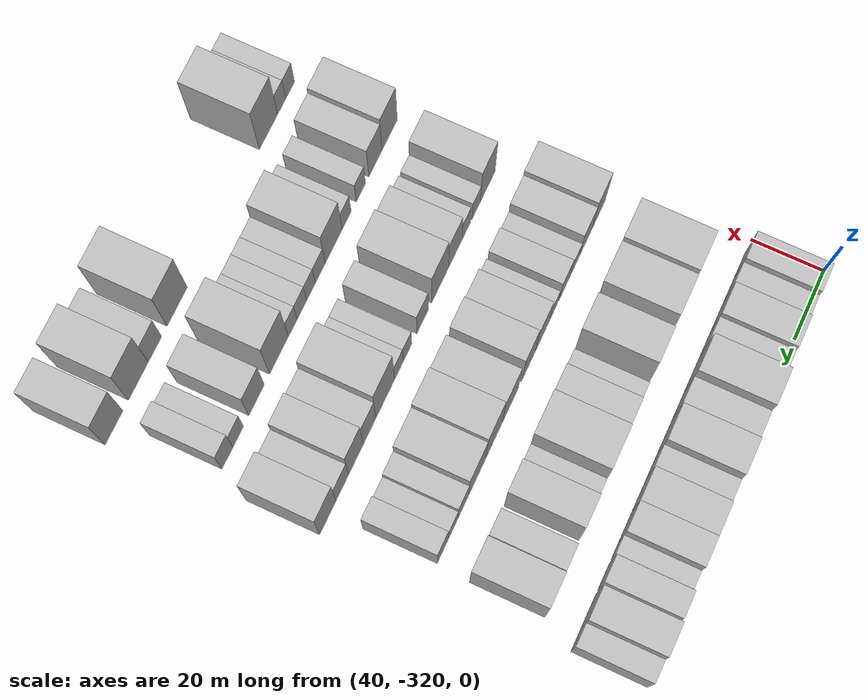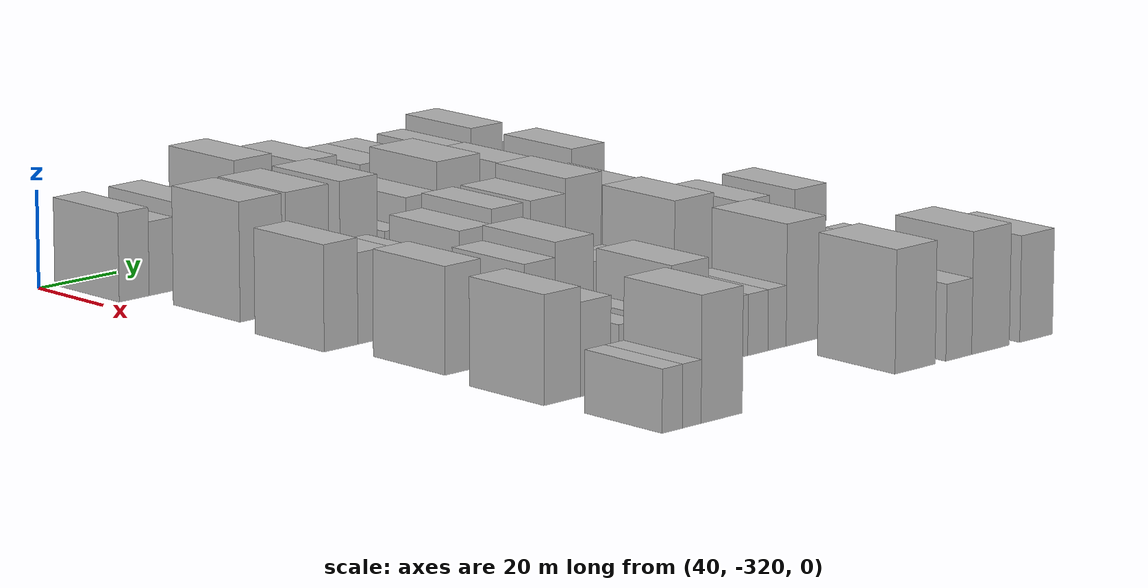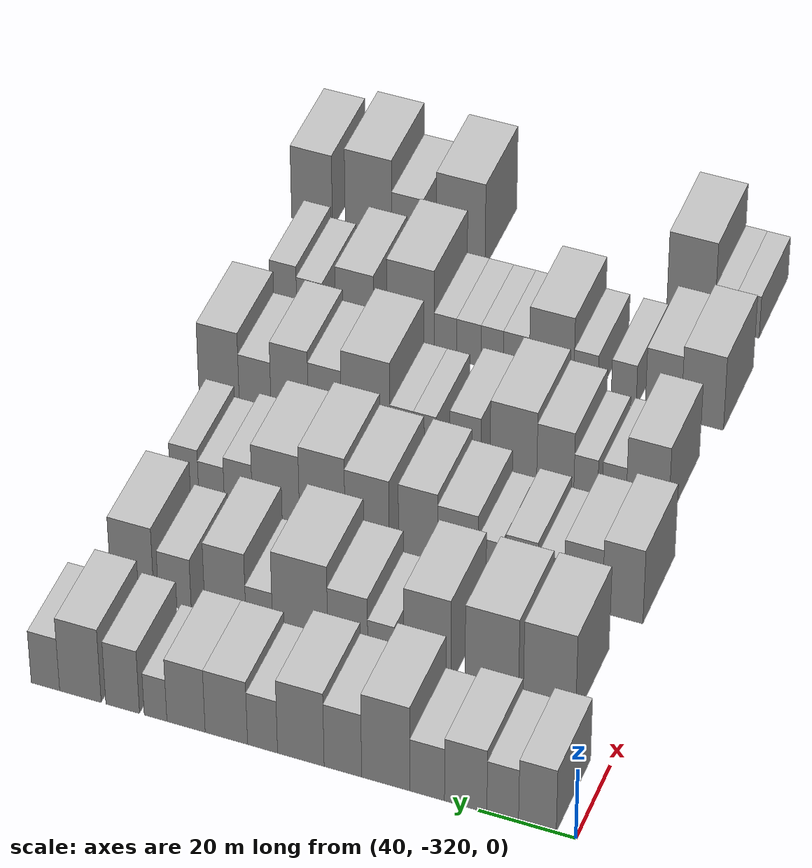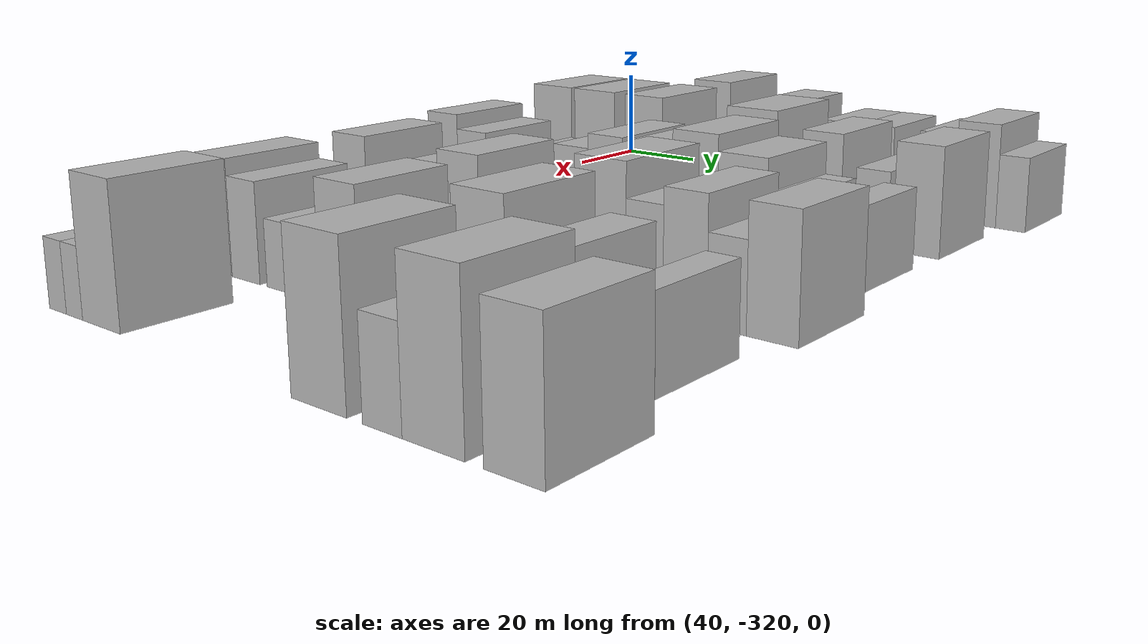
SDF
<sdf version="1.6">
 <world name="default">
  <model name="building_24">
   <static>1</static>
   <pose>50.0000 -312.0720 0 0.000000 0.000000 0.000000</pose>
   <link name="link">
    <pose>0 0 9.00 0 0 0</pose>
    <collision name="collision"><geometry><box><size>20.0000 7.7476 18.0000</size></box></geometry></collision>
    <visual name="visual">
     <cast_shadows>0</cast_shadows>
     <geometry><box><size>20.0000 7.7476 18.0000</size></box></geometry>
     <material>
      <script>
       <uri>model://HANNAS_wall/materials/scripts</uri>
       <uri>model://HANNAS_wall/materials/textures</uri>
       <name>vrc/HANNAS_wall</name>
      </script>
     </material>
    </visual>
   </link>
  </model>
  <model name="building_25">
   <static>1</static>
   <pose>50.0000 -304.9393 0 0.000000 0.000000 0.000000</pose>
   <link name="link">
    <pose>0 0 7.50 0 0 0</pose>
    <collision name="collision"><geometry><box><size>20.0000 6.5178 15.0000</size></box></geometry></collision>
    <visual name="visual">
     <cast_shadows>0</cast_shadows>
     <geometry><box><size>20.0000 6.5178 15.0000</size></box></geometry>
     <material>
      <script>
       <uri>model://HANNAS_wall/materials/scripts</uri>
       <uri>model://HANNAS_wall/materials/textures</uri>
       <name>vrc/HANNAS_wall</name>
      </script>
     </material>
    </visual>
   </link>
  </model>
  <model name="building_26">
   <static>1</static>
   <pose>50.0000 -297.2961 0 0.000000 0.000000 0.000000</pose>
   <link name="link">
    <pose>0 0 9.00 0 0 0</pose>
    <collision name="collision"><geometry><box><size>20.0000 8.7687 18.0000</size></box></geometry></collision>
    <visual name="visual">
     <cast_shadows>0</cast_shadows>
     <geometry><box><size>20.0000 8.7687 18.0000</size></box></geometry>
     <material>
      <script>
       <uri>model://HANNAS_wall/materials/scripts</uri>
       <uri>model://HANNAS_wall/materials/textures</uri>
       <name>vrc/HANNAS_wall</name>
      </script>
     </material>
    </visual>
   </link>
  </model>
  <model name="building_27">
   <static>1</static>
   <pose>50.0000 -289.3078 0 0.000000 0.000000 0.000000</pose>
   <link name="link">
    <pose>0 0 7.50 0 0 0</pose>
    <collision name="collision"><geometry><box><size>20.0000 7.2079 15.0000</size></box></geometry></collision>
    <visual name="visual">
     <cast_shadows>0</cast_shadows>
     <geometry><box><size>20.0000 7.2079 15.0000</size></box></geometry>
     <material>
      <script>
       <uri>model://HANNAS_wall/materials/scripts</uri>
       <uri>model://HANNAS_wall/materials/textures</uri>
       <name>vrc/HANNAS_wall</name>
      </script>
     </material>
    </visual>
   </link>
  </model>
  <model name="building_28">
   <static>1</static>
   <pose>50.0000 -280.6868 0 0.000000 0.000000 0.000000</pose>
   <link name="link">
    <pose>0 0 12.00 0 0 0</pose>
    <collision name="collision"><geometry><box><size>20.0000 10.0341 24.0000</size></box></geometry></collision>
    <visual name="visual">
     <cast_shadows>0</cast_shadows>
     <geometry><box><size>20.0000 10.0341 24.0000</size></box></geometry>
     <material>
      <script>
       <uri>model://HANNAS_wall/materials/scripts</uri>
       <uri>model://HANNAS_wall/materials/textures</uri>
       <name>vrc/HANNAS_wall</name>
      </script>
     </material>
    </visual>
   </link>
  </model>
  <model name="building_29">
   <static>1</static>
   <pose>50.0000 -271.7418 0 0.000000 0.000000 0.000000</pose>
   <link name="link">
    <pose>0 0 9.00 0 0 0</pose>
    <collision name="collision"><geometry><box><size>20.0000 7.8561 18.0000</size></box></geometry></collision>
    <visual name="visual">
     <cast_shadows>0</cast_shadows>
     <geometry><box><size>20.0000 7.8561 18.0000</size></box></geometry>
     <material>
      <script>
       <uri>model://HANNAS_wall/materials/scripts</uri>
       <uri>model://HANNAS_wall/materials/textures</uri>
       <name>vrc/HANNAS_wall</name>
      </script>
     </material>
    </visual>
   </link>
  </model>
  <model name="building_30">
   <static>1</static>
   <pose>50.0000 -262.9113 0 0.000000 0.000000 0.000000</pose>
   <link name="link">
    <pose>0 0 10.50 0 0 0</pose>
    <collision name="collision"><geometry><box><size>20.0000 9.8049 21.0000</size></box></geometry></collision>
    <visual name="visual">
     <cast_shadows>0</cast_shadows>
     <geometry><box><size>20.0000 9.8049 21.0000</size></box></geometry>
     <material>
      <script>
       <uri>model://HANNAS_wall/materials/scripts</uri>
       <uri>model://HANNAS_wall/materials/textures</uri>
       <name>vrc/HANNAS_wall</name>
      </script>
     </material>
    </visual>
   </link>
  </model>
  <model name="building_31">
   <static>1</static>
   <pose>50.0000 -254.8422 0 0.000000 0.000000 0.000000</pose>
   <link name="link">
    <pose>0 0 7.50 0 0 0</pose>
    <collision name="collision"><geometry><box><size>20.0000 6.3333 15.0000</size></box></geometry></collision>
    <visual name="visual">
     <cast_shadows>0</cast_shadows>
     <geometry><box><size>20.0000 6.3333 15.0000</size></box></geometry>
     <material>
      <script>
       <uri>model://HANNAS_wall/materials/scripts</uri>
       <uri>model://HANNAS_wall/materials/textures</uri>
       <name>vrc/HANNAS_wall</name>
      </script>
     </material>
    </visual>
   </link>
  </model>
  <model name="building_32">
   <static>1</static>
   <pose>50.0000 -247.1792 0 0.000000 0.000000 0.000000</pose>
   <link name="link">
    <pose>0 0 9.00 0 0 0</pose>
    <collision name="collision"><geometry><box><size>20.0000 8.9926 18.0000</size></box></geometry></collision>
    <visual name="visual">
     <cast_shadows>0</cast_shadows>
     <geometry><box><size>20.0000 8.9926 18.0000</size></box></geometry>
     <material>
      <script>
       <uri>model://HANNAS_wall/materials/scripts</uri>
       <uri>model://HANNAS_wall/materials/textures</uri>
       <name>vrc/HANNAS_wall</name>
      </script>
     </material>
    </visual>
   </link>
  </model>
  <model name="building_33">
   <static>1</static>
   <pose>50.0000 -238.6051 0 0.000000 0.000000 0.000000</pose>
   <link name="link">
    <pose>0 0 9.00 0 0 0</pose>
    <collision name="collision"><geometry><box><size>20.0000 8.1556 18.0000</size></box></geometry></collision>
    <visual name="visual">
     <cast_shadows>0</cast_shadows>
     <geometry><box><size>20.0000 8.1556 18.0000</size></box></geometry>
     <material>
      <script>
       <uri>model://HANNAS_wall/materials/scripts</uri>
       <uri>model://HANNAS_wall/materials/textures</uri>
       <name>vrc/HANNAS_wall</name>
      </script>
     </material>
    </visual>
   </link>
  </model>
  <model name="building_34">
   <static>1</static>
   <pose>50.0000 -232.1040 0 0.000000 0.000000 0.000000</pose>
   <link name="link">
    <pose>0 0 6.00 0 0 0</pose>
    <collision name="collision"><geometry><box><size>20.0000 4.8466 12.0000</size></box></geometry></collision>
    <visual name="visual">
     <cast_shadows>0</cast_shadows>
     <geometry><box><size>20.0000 4.8466 12.0000</size></box></geometry>
     <material>
      <script>
       <uri>model://HANNAS_wall/materials/scripts</uri>
       <uri>model://HANNAS_wall/materials/textures</uri>
       <name>vrc/HANNAS_wall</name>
      </script>
     </material>
    </visual>
   </link>
  </model>
  <model name="building_35">
   <static>1</static>
   <pose>50.0000 -225.0665 0 0.000000 0.000000 0.000000</pose>
   <link name="link">
    <pose>0 0 9.00 0 0 0</pose>
    <collision name="collision"><geometry><box><size>20.0000 7.2285 18.0000</size></box></geometry></collision>
    <visual name="visual">
     <cast_shadows>0</cast_shadows>
     <geometry><box><size>20.0000 7.2285 18.0000</size></box></geometry>
     <material>
      <script>
       <uri>model://HANNAS_wall/materials/scripts</uri>
       <uri>model://HANNAS_wall/materials/textures</uri>
       <name>vrc/HANNAS_wall</name>
      </script>
     </material>
    </visual>
   </link>
  </model>
  <model name="building_36">
   <static>1</static>
   <pose>50.0000 -215.9780 0 0.000000 0.000000 0.000000</pose>
   <link name="link">
    <pose>0 0 10.50 0 0 0</pose>
    <collision name="collision"><geometry><box><size>20.0000 8.9484 21.0000</size></box></geometry></collision>
    <visual name="visual">
     <cast_shadows>0</cast_shadows>
     <geometry><box><size>20.0000 8.9484 21.0000</size></box></geometry>
     <material>
      <script>
       <uri>model://HANNAS_wall/materials/scripts</uri>
       <uri>model://HANNAS_wall/materials/textures</uri>
       <name>vrc/HANNAS_wall</name>
      </script>
     </material>
    </visual>
   </link>
  </model>
  <model name="building_37">
   <static>1</static>
   <pose>50.0000 -208.4370 0 0.000000 0.000000 0.000000</pose>
   <link name="link">
    <pose>0 0 7.50 0 0 0</pose>
    <collision name="collision"><geometry><box><size>20.0000 6.1336 15.0000</size></box></geometry></collision>
    <visual name="visual">
     <cast_shadows>0</cast_shadows>
     <geometry><box><size>20.0000 6.1336 15.0000</size></box></geometry>
     <material>
      <script>
       <uri>model://HANNAS_wall/materials/scripts</uri>
       <uri>model://HANNAS_wall/materials/textures</uri>
       <name>vrc/HANNAS_wall</name>
      </script>
     </material>
    </visual>
   </link>
  </model>
  <model name="building_143">
   <static>1</static>
   <pose>79.0000 -304.1203 0 0.000000 0.000000 0.000000</pose>
   <link name="link">
    <pose>0 0 12.00 0 0 0</pose>
    <collision name="collision"><geometry><box><size>20.0000 10.9983 24.0000</size></box></geometry></collision>
    <visual name="visual">
     <cast_shadows>0</cast_shadows>
     <geometry><box><size>20.0000 10.9983 24.0000</size></box></geometry>
     <material>
      <script>
       <uri>model://HANNAS_wall/materials/scripts</uri>
       <uri>model://HANNAS_wall/materials/textures</uri>
       <name>vrc/HANNAS_wall</name>
      </script>
     </material>
    </visual>
   </link>
  </model>
  <model name="building_144">
   <static>1</static>
   <pose>79.0000 -291.9958 0 0.000000 0.000000 0.000000</pose>
   <link name="link">
    <pose>0 0 12.00 0 0 0</pose>
    <collision name="collision"><geometry><box><size>20.0000 11.2507 24.0000</size></box></geometry></collision>
    <visual name="visual">
     <cast_shadows>0</cast_shadows>
     <geometry><box><size>20.0000 11.2507 24.0000</size></box></geometry>
     <material>
      <script>
       <uri>model://HANNAS_wall/materials/scripts</uri>
       <uri>model://HANNAS_wall/materials/textures</uri>
       <name>vrc/HANNAS_wall</name>
      </script>
     </material>
    </visual>
   </link>
  </model>
  <model name="building_145">
   <static>1</static>
   <pose>79.0000 -278.4063 0 0.000000 0.000000 0.000000</pose>
   <link name="link">
    <pose>0 0 12.00 0 0 0</pose>
    <collision name="collision"><geometry><box><size>20.0000 9.9284 24.0000</size></box></geometry></collision>
    <visual name="visual">
     <cast_shadows>0</cast_shadows>
     <geometry><box><size>20.0000 9.9284 24.0000</size></box></geometry>
     <material>
      <script>
       <uri>model://HANNAS_wall/materials/scripts</uri>
       <uri>model://HANNAS_wall/materials/textures</uri>
       <name>vrc/HANNAS_wall</name>
      </script>
     </material>
    </visual>
   </link>
  </model>
  <model name="building_146">
   <static>1</static>
   <pose>79.0000 -268.5909 0 0.000000 0.000000 0.000000</pose>
   <link name="link">
    <pose>0 0 6.00 0 0 0</pose>
    <collision name="collision"><geometry><box><size>20.0000 5.7024 12.0000</size></box></geometry></collision>
    <visual name="visual">
     <cast_shadows>0</cast_shadows>
     <geometry><box><size>20.0000 5.7024 12.0000</size></box></geometry>
     <material>
      <script>
       <uri>model://HANNAS_wall/materials/scripts</uri>
       <uri>model://HANNAS_wall/materials/textures</uri>
       <name>vrc/HANNAS_wall</name>
      </script>
     </material>
    </visual>
   </link>
  </model>
  <model name="building_147">
   <static>1</static>
   <pose>79.0000 -261.4740 0 0.000000 0.000000 0.000000</pose>
   <link name="link">
    <pose>0 0 9.00 0 0 0</pose>
    <collision name="collision"><geometry><box><size>20.0000 8.5312 18.0000</size></box></geometry></collision>
    <visual name="visual">
     <cast_shadows>0</cast_shadows>
     <geometry><box><size>20.0000 8.5312 18.0000</size></box></geometry>
     <material>
      <script>
       <uri>model://HANNAS_wall/materials/scripts</uri>
       <uri>model://HANNAS_wall/materials/textures</uri>
       <name>vrc/HANNAS_wall</name>
      </script>
     </material>
    </visual>
   </link>
  </model>
  <model name="building_148">
   <static>1</static>
   <pose>79.0000 -251.2696 0 0.000000 0.000000 0.000000</pose>
   <link name="link">
    <pose>0 0 12.00 0 0 0</pose>
    <collision name="collision"><geometry><box><size>20.0000 11.8776 24.0000</size></box></geometry></collision>
    <visual name="visual">
     <cast_shadows>0</cast_shadows>
     <geometry><box><size>20.0000 11.8776 24.0000</size></box></geometry>
     <material>
      <script>
       <uri>model://HANNAS_wall/materials/scripts</uri>
       <uri>model://HANNAS_wall/materials/textures</uri>
       <name>vrc/HANNAS_wall</name>
      </script>
     </material>
    </visual>
   </link>
  </model>
  <model name="building_149">
   <static>1</static>
   <pose>79.0000 -242.4542 0 0.000000 0.000000 0.000000</pose>
   <link name="link">
    <pose>0 0 6.00 0 0 0</pose>
    <collision name="collision"><geometry><box><size>20.0000 5.7533 12.0000</size></box></geometry></collision>
    <visual name="visual">
     <cast_shadows>0</cast_shadows>
     <geometry><box><size>20.0000 5.7533 12.0000</size></box></geometry>
     <material>
      <script>
       <uri>model://HANNAS_wall/materials/scripts</uri>
       <uri>model://HANNAS_wall/materials/textures</uri>
       <name>vrc/HANNAS_wall</name>
      </script>
     </material>
    </visual>
   </link>
  </model>
  <model name="building_150">
   <static>1</static>
   <pose>79.0000 -235.1340 0 0.000000 0.000000 0.000000</pose>
   <link name="link">
    <pose>0 0 10.50 0 0 0</pose>
    <collision name="collision"><geometry><box><size>20.0000 8.8870 21.0000</size></box></geometry></collision>
    <visual name="visual">
     <cast_shadows>0</cast_shadows>
     <geometry><box><size>20.0000 8.8870 21.0000</size></box></geometry>
     <material>
      <script>
       <uri>model://HANNAS_wall/materials/scripts</uri>
       <uri>model://HANNAS_wall/materials/textures</uri>
       <name>vrc/HANNAS_wall</name>
      </script>
     </material>
    </visual>
   </link>
  </model>
  <model name="building_151">
   <static>1</static>
   <pose>79.0000 -224.1368 0 0.000000 0.000000 0.000000</pose>
   <link name="link">
    <pose>0 0 7.50 0 0 0</pose>
    <collision name="collision"><geometry><box><size>20.0000 7.1073 15.0000</size></box></geometry></collision>
    <visual name="visual">
     <cast_shadows>0</cast_shadows>
     <geometry><box><size>20.0000 7.1073 15.0000</size></box></geometry>
     <material>
      <script>
       <uri>model://HANNAS_wall/materials/scripts</uri>
       <uri>model://HANNAS_wall/materials/textures</uri>
       <name>vrc/HANNAS_wall</name>
      </script>
     </material>
    </visual>
   </link>
  </model>
  <model name="building_152">
   <static>1</static>
   <pose>79.0000 -214.8892 0 0.000000 0.000000 0.000000</pose>
   <link name="link">
    <pose>0 0 10.50 0 0 0</pose>
    <collision name="collision"><geometry><box><size>20.0000 9.3881 21.0000</size></box></geometry></collision>
    <visual name="visual">
     <cast_shadows>0</cast_shadows>
     <geometry><box><size>20.0000 9.3881 21.0000</size></box></geometry>
     <material>
      <script>
       <uri>model://HANNAS_wall/materials/scripts</uri>
       <uri>model://HANNAS_wall/materials/textures</uri>
       <name>vrc/HANNAS_wall</name>
      </script>
     </material>
    </visual>
   </link>
  </model>
  <model name="building_259">
   <static>1</static>
   <pose>108.0000 -309.3346 0 0.000000 0.000000 0.000000</pose>
   <link name="link">
    <pose>0 0 10.50 0 0 0</pose>
    <collision name="collision"><geometry><box><size>20.0000 8.6631 21.0000</size></box></geometry></collision>
    <visual name="visual">
     <cast_shadows>0</cast_shadows>
     <geometry><box><size>20.0000 8.6631 21.0000</size></box></geometry>
     <material>
      <script>
       <uri>model://HANNAS_wall/materials/scripts</uri>
       <uri>model://HANNAS_wall/materials/textures</uri>
       <name>vrc/HANNAS_wall</name>
      </script>
     </material>
    </visual>
   </link>
  </model>
  <model name="building_260">
   <static>1</static>
   <pose>108.0000 -300.9026 0 0.000000 0.000000 0.000000</pose>
   <link name="link">
    <pose>0 0 9.00 0 0 0</pose>
    <collision name="collision"><geometry><box><size>20.0000 8.2010 18.0000</size></box></geometry></collision>
    <visual name="visual">
     <cast_shadows>0</cast_shadows>
     <geometry><box><size>20.0000 8.2010 18.0000</size></box></geometry>
     <material>
      <script>
       <uri>model://HANNAS_wall/materials/scripts</uri>
       <uri>model://HANNAS_wall/materials/textures</uri>
       <name>vrc/HANNAS_wall</name>
      </script>
     </material>
    </visual>
   </link>
  </model>
  <model name="building_261">
   <static>1</static>
   <pose>108.0000 -293.9727 0 0.000000 0.000000 0.000000</pose>
   <link name="link">
    <pose>0 0 6.00 0 0 0</pose>
    <collision name="collision"><geometry><box><size>20.0000 5.6588 12.0000</size></box></geometry></collision>
    <visual name="visual">
     <cast_shadows>0</cast_shadows>
     <geometry><box><size>20.0000 5.6588 12.0000</size></box></geometry>
     <material>
      <script>
       <uri>model://HANNAS_wall/materials/scripts</uri>
       <uri>model://HANNAS_wall/materials/textures</uri>
       <name>vrc/HANNAS_wall</name>
      </script>
     </material>
    </visual>
   </link>
  </model>
  <model name="building_262">
   <static>1</static>
   <pose>108.0000 -287.7165 0 0.000000 0.000000 0.000000</pose>
   <link name="link">
    <pose>0 0 7.50 0 0 0</pose>
    <collision name="collision"><geometry><box><size>20.0000 6.8536 15.0000</size></box></geometry></collision>
    <visual name="visual">
     <cast_shadows>0</cast_shadows>
     <geometry><box><size>20.0000 6.8536 15.0000</size></box></geometry>
     <material>
      <script>
       <uri>model://HANNAS_wall/materials/scripts</uri>
       <uri>model://HANNAS_wall/materials/textures</uri>
       <name>vrc/HANNAS_wall</name>
      </script>
     </material>
    </visual>
   </link>
  </model>
  <model name="building_263">
   <static>1</static>
   <pose>108.0000 -280.8241 0 0.000000 0.000000 0.000000</pose>
   <link name="link">
    <pose>0 0 6.00 0 0 0</pose>
    <collision name="collision"><geometry><box><size>20.0000 4.9312 12.0000</size></box></geometry></collision>
    <visual name="visual">
     <cast_shadows>0</cast_shadows>
     <geometry><box><size>20.0000 4.9312 12.0000</size></box></geometry>
     <material>
      <script>
       <uri>model://HANNAS_wall/materials/scripts</uri>
       <uri>model://HANNAS_wall/materials/textures</uri>
       <name>vrc/HANNAS_wall</name>
      </script>
     </material>
    </visual>
   </link>
  </model>
  <model name="building_264">
   <static>1</static>
   <pose>108.0000 -273.9994 0 0.000000 0.000000 0.000000</pose>
   <link name="link">
    <pose>0 0 9.00 0 0 0</pose>
    <collision name="collision"><geometry><box><size>20.0000 8.7182 18.0000</size></box></geometry></collision>
    <visual name="visual">
     <cast_shadows>0</cast_shadows>
     <geometry><box><size>20.0000 8.7182 18.0000</size></box></geometry>
     <material>
      <script>
       <uri>model://HANNAS_wall/materials/scripts</uri>
       <uri>model://HANNAS_wall/materials/textures</uri>
       <name>vrc/HANNAS_wall</name>
      </script>
     </material>
    </visual>
   </link>
  </model>
  <model name="building_265">
   <static>1</static>
   <pose>108.0000 -265.4153 0 0.000000 0.000000 0.000000</pose>
   <link name="link">
    <pose>0 0 10.50 0 0 0</pose>
    <collision name="collision"><geometry><box><size>20.0000 8.4499 21.0000</size></box></geometry></collision>
    <visual name="visual">
     <cast_shadows>0</cast_shadows>
     <geometry><box><size>20.0000 8.4499 21.0000</size></box></geometry>
     <material>
      <script>
       <uri>model://HANNAS_wall/materials/scripts</uri>
       <uri>model://HANNAS_wall/materials/textures</uri>
       <name>vrc/HANNAS_wall</name>
      </script>
     </material>
    </visual>
   </link>
  </model>
  <model name="building_266">
   <static>1</static>
   <pose>108.0000 -254.3770 0 0.000000 0.000000 0.000000</pose>
   <link name="link">
    <pose>0 0 10.50 0 0 0</pose>
    <collision name="collision"><geometry><box><size>20.0000 9.6268 21.0000</size></box></geometry></collision>
    <visual name="visual">
     <cast_shadows>0</cast_shadows>
     <geometry><box><size>20.0000 9.6268 21.0000</size></box></geometry>
     <material>
      <script>
       <uri>model://HANNAS_wall/materials/scripts</uri>
       <uri>model://HANNAS_wall/materials/textures</uri>
       <name>vrc/HANNAS_wall</name>
      </script>
     </material>
    </visual>
   </link>
  </model>
  <model name="building_267">
   <static>1</static>
   <pose>108.0000 -244.5759 0 0.000000 0.000000 0.000000</pose>
   <link name="link">
    <pose>0 0 12.00 0 0 0</pose>
    <collision name="collision"><geometry><box><size>20.0000 9.9753 24.0000</size></box></geometry></collision>
    <visual name="visual">
     <cast_shadows>0</cast_shadows>
     <geometry><box><size>20.0000 9.9753 24.0000</size></box></geometry>
     <material>
      <script>
       <uri>model://HANNAS_wall/materials/scripts</uri>
       <uri>model://HANNAS_wall/materials/textures</uri>
       <name>vrc/HANNAS_wall</name>
      </script>
     </material>
    </visual>
   </link>
  </model>
  <model name="building_268">
   <static>1</static>
   <pose>108.0000 -234.4117 0 0.000000 0.000000 0.000000</pose>
   <link name="link">
    <pose>0 0 10.50 0 0 0</pose>
    <collision name="collision"><geometry><box><size>20.0000 10.3530 21.0000</size></box></geometry></collision>
    <visual name="visual">
     <cast_shadows>0</cast_shadows>
     <geometry><box><size>20.0000 10.3530 21.0000</size></box></geometry>
     <material>
      <script>
       <uri>model://HANNAS_wall/materials/scripts</uri>
       <uri>model://HANNAS_wall/materials/textures</uri>
       <name>vrc/HANNAS_wall</name>
      </script>
     </material>
    </visual>
   </link>
  </model>
  <model name="building_269">
   <static>1</static>
   <pose>108.0000 -226.1285 0 0.000000 0.000000 0.000000</pose>
   <link name="link">
    <pose>0 0 7.50 0 0 0</pose>
    <collision name="collision"><geometry><box><size>20.0000 6.2135 15.0000</size></box></geometry></collision>
    <visual name="visual">
     <cast_shadows>0</cast_shadows>
     <geometry><box><size>20.0000 6.2135 15.0000</size></box></geometry>
     <material>
      <script>
       <uri>model://HANNAS_wall/materials/scripts</uri>
       <uri>model://HANNAS_wall/materials/textures</uri>
       <name>vrc/HANNAS_wall</name>
      </script>
     </material>
    </visual>
   </link>
  </model>
  <model name="building_270">
   <static>1</static>
   <pose>108.0000 -220.1847 0 0.000000 0.000000 0.000000</pose>
   <link name="link">
    <pose>0 0 6.00 0 0 0</pose>
    <collision name="collision"><geometry><box><size>20.0000 5.6742 12.0000</size></box></geometry></collision>
    <visual name="visual">
     <cast_shadows>0</cast_shadows>
     <geometry><box><size>20.0000 5.6742 12.0000</size></box></geometry>
     <material>
      <script>
       <uri>model://HANNAS_wall/materials/scripts</uri>
       <uri>model://HANNAS_wall/materials/textures</uri>
       <name>vrc/HANNAS_wall</name>
      </script>
     </material>
    </visual>
   </link>
  </model>
  <model name="building_271">
   <static>1</static>
   <pose>108.0000 -214.2096 0 0.000000 0.000000 0.000000</pose>
   <link name="link">
    <pose>0 0 7.50 0 0 0</pose>
    <collision name="collision"><geometry><box><size>20.0000 6.2760 15.0000</size></box></geometry></collision>
    <visual name="visual">
     <cast_shadows>0</cast_shadows>
     <geometry><box><size>20.0000 6.2760 15.0000</size></box></geometry>
     <material>
      <script>
       <uri>model://HANNAS_wall/materials/scripts</uri>
       <uri>model://HANNAS_wall/materials/textures</uri>
       <name>vrc/HANNAS_wall</name>
      </script>
     </material>
    </visual>
   </link>
  </model>
  <model name="building_377">
   <static>1</static>
   <pose>137.0000 -304.5973 0 0.000000 0.000000 0.000000</pose>
   <link name="link">
    <pose>0 0 10.50 0 0 0</pose>
    <collision name="collision"><geometry><box><size>20.0000 9.2241 21.0000</size></box></geometry></collision>
    <visual name="visual">
     <cast_shadows>0</cast_shadows>
     <geometry><box><size>20.0000 9.2241 21.0000</size></box></geometry>
     <material>
      <script>
       <uri>model://HANNAS_wall/materials/scripts</uri>
       <uri>model://HANNAS_wall/materials/textures</uri>
       <name>vrc/HANNAS_wall</name>
      </script>
     </material>
    </visual>
   </link>
  </model>
  <model name="building_378">
   <static>1</static>
   <pose>137.0000 -297.4002 0 0.000000 0.000000 0.000000</pose>
   <link name="link">
    <pose>0 0 6.00 0 0 0</pose>
    <collision name="collision"><geometry><box><size>20.0000 5.1702 12.0000</size></box></geometry></collision>
    <visual name="visual">
     <cast_shadows>0</cast_shadows>
     <geometry><box><size>20.0000 5.1702 12.0000</size></box></geometry>
     <material>
      <script>
       <uri>model://HANNAS_wall/materials/scripts</uri>
       <uri>model://HANNAS_wall/materials/textures</uri>
       <name>vrc/HANNAS_wall</name>
      </script>
     </material>
    </visual>
   </link>
  </model>
  <model name="building_379">
   <static>1</static>
   <pose>137.0000 -291.2258 0 0.000000 0.000000 0.000000</pose>
   <link name="link">
    <pose>0 0 6.00 0 0 0</pose>
    <collision name="collision"><geometry><box><size>20.0000 5.1786 12.0000</size></box></geometry></collision>
    <visual name="visual">
     <cast_shadows>0</cast_shadows>
     <geometry><box><size>20.0000 5.1786 12.0000</size></box></geometry>
     <material>
      <script>
       <uri>model://HANNAS_wall/materials/scripts</uri>
       <uri>model://HANNAS_wall/materials/textures</uri>
       <name>vrc/HANNAS_wall</name>
      </script>
     </material>
    </visual>
   </link>
  </model>
  <model name="building_380">
   <static>1</static>
   <pose>137.0000 -284.5797 0 0.000000 0.000000 0.000000</pose>
   <link name="link">
    <pose>0 0 9.00 0 0 0</pose>
    <collision name="collision"><geometry><box><size>20.0000 8.1135 18.0000</size></box></geometry></collision>
    <visual name="visual">
     <cast_shadows>0</cast_shadows>
     <geometry><box><size>20.0000 8.1135 18.0000</size></box></geometry>
     <material>
      <script>
       <uri>model://HANNAS_wall/materials/scripts</uri>
       <uri>model://HANNAS_wall/materials/textures</uri>
       <name>vrc/HANNAS_wall</name>
      </script>
     </material>
    </visual>
   </link>
  </model>
  <model name="building_381">
   <static>1</static>
   <pose>137.0000 -275.4033 0 0.000000 0.000000 0.000000</pose>
   <link name="link">
    <pose>0 0 10.50 0 0 0</pose>
    <collision name="collision"><geometry><box><size>20.0000 10.2393 21.0000</size></box></geometry></collision>
    <visual name="visual">
     <cast_shadows>0</cast_shadows>
     <geometry><box><size>20.0000 10.2393 21.0000</size></box></geometry>
     <material>
      <script>
       <uri>model://HANNAS_wall/materials/scripts</uri>
       <uri>model://HANNAS_wall/materials/textures</uri>
       <name>vrc/HANNAS_wall</name>
      </script>
     </material>
    </visual>
   </link>
  </model>
  <model name="building_382">
   <static>1</static>
   <pose>137.0000 -264.8609 0 0.000000 0.000000 0.000000</pose>
   <link name="link">
    <pose>0 0 7.50 0 0 0</pose>
    <collision name="collision"><geometry><box><size>20.0000 6.8454 15.0000</size></box></geometry></collision>
    <visual name="visual">
     <cast_shadows>0</cast_shadows>
     <geometry><box><size>20.0000 6.8454 15.0000</size></box></geometry>
     <material>
      <script>
       <uri>model://HANNAS_wall/materials/scripts</uri>
       <uri>model://HANNAS_wall/materials/textures</uri>
       <name>vrc/HANNAS_wall</name>
      </script>
     </material>
    </visual>
   </link>
  </model>
  <model name="building_383">
   <static>1</static>
   <pose>137.0000 -255.9098 0 0.000000 0.000000 0.000000</pose>
   <link name="link">
    <pose>0 0 6.00 0 0 0</pose>
    <collision name="collision"><geometry><box><size>20.0000 5.0570 12.0000</size></box></geometry></collision>
    <visual name="visual">
     <cast_shadows>0</cast_shadows>
     <geometry><box><size>20.0000 5.0570 12.0000</size></box></geometry>
     <material>
      <script>
       <uri>model://HANNAS_wall/materials/scripts</uri>
       <uri>model://HANNAS_wall/materials/textures</uri>
       <name>vrc/HANNAS_wall</name>
      </script>
     </material>
    </visual>
   </link>
  </model>
  <model name="building_384">
   <static>1</static>
   <pose>137.0000 -250.7927 0 0.000000 0.000000 0.000000</pose>
   <link name="link">
    <pose>0 0 6.00 0 0 0</pose>
    <collision name="collision"><geometry><box><size>20.0000 5.1770 12.0000</size></box></geometry></collision>
    <visual name="visual">
     <cast_shadows>0</cast_shadows>
     <geometry><box><size>20.0000 5.1770 12.0000</size></box></geometry>
     <material>
      <script>
       <uri>model://HANNAS_wall/materials/scripts</uri>
       <uri>model://HANNAS_wall/materials/textures</uri>
       <name>vrc/HANNAS_wall</name>
      </script>
     </material>
    </visual>
   </link>
  </model>
  <model name="building_385">
   <static>1</static>
   <pose>137.0000 -242.8134 0 0.000000 0.000000 0.000000</pose>
   <link name="link">
    <pose>0 0 12.00 0 0 0</pose>
    <collision name="collision"><geometry><box><size>20.0000 10.7817 24.0000</size></box></geometry></collision>
    <visual name="visual">
     <cast_shadows>0</cast_shadows>
     <geometry><box><size>20.0000 10.7817 24.0000</size></box></geometry>
     <material>
      <script>
       <uri>model://HANNAS_wall/materials/scripts</uri>
       <uri>model://HANNAS_wall/materials/textures</uri>
       <name>vrc/HANNAS_wall</name>
      </script>
     </material>
    </visual>
   </link>
  </model>
  <model name="building_386">
   <static>1</static>
   <pose>137.0000 -233.7277 0 0.000000 0.000000 0.000000</pose>
   <link name="link">
    <pose>0 0 9.00 0 0 0</pose>
    <collision name="collision"><geometry><box><size>20.0000 7.3895 18.0000</size></box></geometry></collision>
    <visual name="visual">
     <cast_shadows>0</cast_shadows>
     <geometry><box><size>20.0000 7.3895 18.0000</size></box></geometry>
     <material>
      <script>
       <uri>model://HANNAS_wall/materials/scripts</uri>
       <uri>model://HANNAS_wall/materials/textures</uri>
       <name>vrc/HANNAS_wall</name>
      </script>
     </material>
    </visual>
   </link>
  </model>
  <model name="building_387">
   <static>1</static>
   <pose>137.0000 -225.8302 0 0.000000 0.000000 0.000000</pose>
   <link name="link">
    <pose>0 0 10.50 0 0 0</pose>
    <collision name="collision"><geometry><box><size>20.0000 8.4057 21.0000</size></box></geometry></collision>
    <visual name="visual">
     <cast_shadows>0</cast_shadows>
     <geometry><box><size>20.0000 8.4057 21.0000</size></box></geometry>
     <material>
      <script>
       <uri>model://HANNAS_wall/materials/scripts</uri>
       <uri>model://HANNAS_wall/materials/textures</uri>
       <name>vrc/HANNAS_wall</name>
      </script>
     </material>
    </visual>
   </link>
  </model>
  <model name="building_388">
   <static>1</static>
   <pose>137.0000 -218.0363 0 0.000000 0.000000 0.000000</pose>
   <link name="link">
    <pose>0 0 7.50 0 0 0</pose>
    <collision name="collision"><geometry><box><size>20.0000 7.1821 15.0000</size></box></geometry></collision>
    <visual name="visual">
     <cast_shadows>0</cast_shadows>
     <geometry><box><size>20.0000 7.1821 15.0000</size></box></geometry>
     <material>
      <script>
       <uri>model://HANNAS_wall/materials/scripts</uri>
       <uri>model://HANNAS_wall/materials/textures</uri>
       <name>vrc/HANNAS_wall</name>
      </script>
     </material>
    </visual>
   </link>
  </model>
  <model name="building_389">
   <static>1</static>
   <pose>137.0000 -209.8883 0 0.000000 0.000000 0.000000</pose>
   <link name="link">
    <pose>0 0 10.50 0 0 0</pose>
    <collision name="collision"><geometry><box><size>20.0000 9.1139 21.0000</size></box></geometry></collision>
    <visual name="visual">
     <cast_shadows>0</cast_shadows>
     <geometry><box><size>20.0000 9.1139 21.0000</size></box></geometry>
     <material>
      <script>
       <uri>model://HANNAS_wall/materials/scripts</uri>
       <uri>model://HANNAS_wall/materials/textures</uri>
       <name>vrc/HANNAS_wall</name>
      </script>
     </material>
    </visual>
   </link>
  </model>
  <model name="building_486">
   <static>1</static>
   <pose>166.0000 -306.7781 0 0.000000 0.000000 0.000000</pose>
   <link name="link">
    <pose>0 0 10.50 0 0 0</pose>
    <collision name="collision"><geometry><box><size>20.0000 9.3312 21.0000</size></box></geometry></collision>
    <visual name="visual">
     <cast_shadows>0</cast_shadows>
     <geometry><box><size>20.0000 9.3312 21.0000</size></box></geometry>
     <material>
      <script>
       <uri>model://HANNAS_wall/materials/scripts</uri>
       <uri>model://HANNAS_wall/materials/textures</uri>
       <name>vrc/HANNAS_wall</name>
      </script>
     </material>
    </visual>
   </link>
  </model>
  <model name="building_487">
   <static>1</static>
   <pose>166.0000 -298.1608 0 0.000000 0.000000 0.000000</pose>
   <link name="link">
    <pose>0 0 9.00 0 0 0</pose>
    <collision name="collision"><geometry><box><size>20.0000 7.9033 18.0000</size></box></geometry></collision>
    <visual name="visual">
     <cast_shadows>0</cast_shadows>
     <geometry><box><size>20.0000 7.9033 18.0000</size></box></geometry>
     <material>
      <script>
       <uri>model://HANNAS_wall/materials/scripts</uri>
       <uri>model://HANNAS_wall/materials/textures</uri>
       <name>vrc/HANNAS_wall</name>
      </script>
     </material>
    </visual>
   </link>
  </model>
  <model name="building_488">
   <static>1</static>
   <pose>166.0000 -289.4353 0 0.000000 0.000000 0.000000</pose>
   <link name="link">
    <pose>0 0 6.00 0 0 0</pose>
    <collision name="collision"><geometry><box><size>20.0000 5.5476 12.0000</size></box></geometry></collision>
    <visual name="visual">
     <cast_shadows>0</cast_shadows>
     <geometry><box><size>20.0000 5.5476 12.0000</size></box></geometry>
     <material>
      <script>
       <uri>model://HANNAS_wall/materials/scripts</uri>
       <uri>model://HANNAS_wall/materials/textures</uri>
       <name>vrc/HANNAS_wall</name>
      </script>
     </material>
    </visual>
   </link>
  </model>
  <model name="building_489">
   <static>1</static>
   <pose>166.0000 -280.9838 0 0.000000 0.000000 0.000000</pose>
   <link name="link">
    <pose>0 0 6.00 0 0 0</pose>
    <collision name="collision"><geometry><box><size>20.0000 5.3556 12.0000</size></box></geometry></collision>
    <visual name="visual">
     <cast_shadows>0</cast_shadows>
     <geometry><box><size>20.0000 5.3556 12.0000</size></box></geometry>
     <material>
      <script>
       <uri>model://HANNAS_wall/materials/scripts</uri>
       <uri>model://HANNAS_wall/materials/textures</uri>
       <name>vrc/HANNAS_wall</name>
      </script>
     </material>
    </visual>
   </link>
  </model>
  <model name="building_490">
   <static>1</static>
   <pose>166.0000 -273.3466 0 0.000000 0.000000 0.000000</pose>
   <link name="link">
    <pose>0 0 10.50 0 0 0</pose>
    <collision name="collision"><geometry><box><size>20.0000 9.9187 21.0000</size></box></geometry></collision>
    <visual name="visual">
     <cast_shadows>0</cast_shadows>
     <geometry><box><size>20.0000 9.9187 21.0000</size></box></geometry>
     <material>
      <script>
       <uri>model://HANNAS_wall/materials/scripts</uri>
       <uri>model://HANNAS_wall/materials/textures</uri>
       <name>vrc/HANNAS_wall</name>
      </script>
     </material>
    </visual>
   </link>
  </model>
  <model name="building_491">
   <static>1</static>
   <pose>166.0000 -265.4812 0 0.000000 0.000000 0.000000</pose>
   <link name="link">
    <pose>0 0 6.00 0 0 0</pose>
    <collision name="collision"><geometry><box><size>20.0000 5.8122 12.0000</size></box></geometry></collision>
    <visual name="visual">
     <cast_shadows>0</cast_shadows>
     <geometry><box><size>20.0000 5.8122 12.0000</size></box></geometry>
     <material>
      <script>
       <uri>model://HANNAS_wall/materials/scripts</uri>
       <uri>model://HANNAS_wall/materials/textures</uri>
       <name>vrc/HANNAS_wall</name>
      </script>
     </material>
    </visual>
   </link>
  </model>
  <model name="building_492">
   <static>1</static>
   <pose>166.0000 -260.0802 0 0.000000 0.000000 0.000000</pose>
   <link name="link">
    <pose>0 0 6.00 0 0 0</pose>
    <collision name="collision"><geometry><box><size>20.0000 4.9898 12.0000</size></box></geometry></collision>
    <visual name="visual">
     <cast_shadows>0</cast_shadows>
     <geometry><box><size>20.0000 4.9898 12.0000</size></box></geometry>
     <material>
      <script>
       <uri>model://HANNAS_wall/materials/scripts</uri>
       <uri>model://HANNAS_wall/materials/textures</uri>
       <name>vrc/HANNAS_wall</name>
      </script>
     </material>
    </visual>
   </link>
  </model>
  <model name="building_493">
   <static>1</static>
   <pose>166.0000 -254.8317 0 0.000000 0.000000 0.000000</pose>
   <link name="link">
    <pose>0 0 6.00 0 0 0</pose>
    <collision name="collision"><geometry><box><size>20.0000 5.5072 12.0000</size></box></geometry></collision>
    <visual name="visual">
     <cast_shadows>0</cast_shadows>
     <geometry><box><size>20.0000 5.5072 12.0000</size></box></geometry>
     <material>
      <script>
       <uri>model://HANNAS_wall/materials/scripts</uri>
       <uri>model://HANNAS_wall/materials/textures</uri>
       <name>vrc/HANNAS_wall</name>
      </script>
     </material>
    </visual>
   </link>
  </model>
  <model name="building_494">
   <static>1</static>
   <pose>166.0000 -249.5669 0 0.000000 0.000000 0.000000</pose>
   <link name="link">
    <pose>0 0 6.00 0 0 0</pose>
    <collision name="collision"><geometry><box><size>20.0000 5.0223 12.0000</size></box></geometry></collision>
    <visual name="visual">
     <cast_shadows>0</cast_shadows>
     <geometry><box><size>20.0000 5.0223 12.0000</size></box></geometry>
     <material>
      <script>
       <uri>model://HANNAS_wall/materials/scripts</uri>
       <uri>model://HANNAS_wall/materials/textures</uri>
       <name>vrc/HANNAS_wall</name>
      </script>
     </material>
    </visual>
   </link>
  </model>
  <model name="building_495">
   <static>1</static>
   <pose>166.0000 -241.7169 0 0.000000 0.000000 0.000000</pose>
   <link name="link">
    <pose>0 0 12.00 0 0 0</pose>
    <collision name="collision"><geometry><box><size>20.0000 10.6777 24.0000</size></box></geometry></collision>
    <visual name="visual">
     <cast_shadows>0</cast_shadows>
     <geometry><box><size>20.0000 10.6777 24.0000</size></box></geometry>
     <material>
      <script>
       <uri>model://HANNAS_wall/materials/scripts</uri>
       <uri>model://HANNAS_wall/materials/textures</uri>
       <name>vrc/HANNAS_wall</name>
      </script>
     </material>
    </visual>
   </link>
  </model>
  <model name="building_496">
   <static>1</static>
   <pose>166.0000 -229.0389 0 0.000000 0.000000 0.000000</pose>
   <link name="link">
    <pose>0 0 9.00 0 0 0</pose>
    <collision name="collision"><geometry><box><size>20.0000 8.6782 18.0000</size></box></geometry></collision>
    <visual name="visual">
     <cast_shadows>0</cast_shadows>
     <geometry><box><size>20.0000 8.6782 18.0000</size></box></geometry>
     <material>
      <script>
       <uri>model://HANNAS_wall/materials/scripts</uri>
       <uri>model://HANNAS_wall/materials/textures</uri>
       <name>vrc/HANNAS_wall</name>
      </script>
     </material>
    </visual>
   </link>
  </model>
  <model name="building_497">
   <static>1</static>
   <pose>166.0000 -218.7760 0 0.000000 0.000000 0.000000</pose>
   <link name="link">
    <pose>0 0 6.00 0 0 0</pose>
    <collision name="collision"><geometry><box><size>20.0000 5.8476 12.0000</size></box></geometry></collision>
    <visual name="visual">
     <cast_shadows>0</cast_shadows>
     <geometry><box><size>20.0000 5.8476 12.0000</size></box></geometry>
     <material>
      <script>
       <uri>model://HANNAS_wall/materials/scripts</uri>
       <uri>model://HANNAS_wall/materials/textures</uri>
       <name>vrc/HANNAS_wall</name>
      </script>
     </material>
    </visual>
   </link>
  </model>
  <model name="building_498">
   <static>1</static>
   <pose>166.0000 -212.8296 0 0.000000 0.000000 0.000000</pose>
   <link name="link">
    <pose>0 0 7.50 0 0 0</pose>
    <collision name="collision"><geometry><box><size>20.0000 6.0453 15.0000</size></box></geometry></collision>
    <visual name="visual">
     <cast_shadows>0</cast_shadows>
     <geometry><box><size>20.0000 6.0453 15.0000</size></box></geometry>
     <material>
      <script>
       <uri>model://HANNAS_wall/materials/scripts</uri>
       <uri>model://HANNAS_wall/materials/textures</uri>
       <name>vrc/HANNAS_wall</name>
      </script>
     </material>
    </visual>
   </link>
  </model>
  <model name="building_606">
   <static>1</static>
   <pose>195.0000 -307.2092 0 0.000000 0.000000 0.000000</pose>
   <link name="link">
    <pose>0 0 6.00 0 0 0</pose>
    <collision name="collision"><geometry><box><size>20.0000 5.1952 12.0000</size></box></geometry></collision>
    <visual name="visual">
     <cast_shadows>0</cast_shadows>
     <geometry><box><size>20.0000 5.1952 12.0000</size></box></geometry>
     <material>
      <script>
       <uri>model://HANNAS_wall/materials/scripts</uri>
       <uri>model://HANNAS_wall/materials/textures</uri>
       <name>vrc/HANNAS_wall</name>
      </script>
     </material>
    </visual>
   </link>
  </model>
  <model name="building_607">
   <static>1</static>
   <pose>195.0000 -302.1896 0 0.000000 0.000000 0.000000</pose>
   <link name="link">
    <pose>0 0 6.00 0 0 0</pose>
    <collision name="collision"><geometry><box><size>20.0000 4.8440 12.0000</size></box></geometry></collision>
    <visual name="visual">
     <cast_shadows>0</cast_shadows>
     <geometry><box><size>20.0000 4.8440 12.0000</size></box></geometry>
     <material>
      <script>
       <uri>model://HANNAS_wall/materials/scripts</uri>
       <uri>model://HANNAS_wall/materials/textures</uri>
       <name>vrc/HANNAS_wall</name>
      </script>
     </material>
    </visual>
   </link>
  </model>
  <model name="building_608">
   <static>1</static>
   <pose>195.0000 -294.3970 0 0.000000 0.000000 0.000000</pose>
   <link name="link">
    <pose>0 0 12.00 0 0 0</pose>
    <collision name="collision"><geometry><box><size>20.0000 10.7412 24.0000</size></box></geometry></collision>
    <visual name="visual">
     <cast_shadows>0</cast_shadows>
     <geometry><box><size>20.0000 10.7412 24.0000</size></box></geometry>
     <material>
      <script>
       <uri>model://HANNAS_wall/materials/scripts</uri>
       <uri>model://HANNAS_wall/materials/textures</uri>
       <name>vrc/HANNAS_wall</name>
      </script>
     </material>
    </visual>
   </link>
  </model>
  <model name="building_609">
   <static>1</static>
   <pose>195.0000 -242.2507 0 0.000000 0.000000 0.000000</pose>
   <link name="link">
    <pose>0 0 12.00 0 0 0</pose>
    <collision name="collision"><geometry><box><size>20.0000 11.1838 24.0000</size></box></geometry></collision>
    <visual name="visual">
     <cast_shadows>0</cast_shadows>
     <geometry><box><size>20.0000 11.1838 24.0000</size></box></geometry>
     <material>
      <script>
       <uri>model://HANNAS_wall/materials/scripts</uri>
       <uri>model://HANNAS_wall/materials/textures</uri>
       <name>vrc/HANNAS_wall</name>
      </script>
     </material>
    </visual>
   </link>
  </model>
  <model name="building_610">
   <static>1</static>
   <pose>195.0000 -230.0084 0 0.000000 0.000000 0.000000</pose>
   <link name="link">
    <pose>0 0 7.50 0 0 0</pose>
    <collision name="collision"><geometry><box><size>20.0000 7.3008 15.0000</size></box></geometry></collision>
    <visual name="visual">
     <cast_shadows>0</cast_shadows>
     <geometry><box><size>20.0000 7.3008 15.0000</size></box></geometry>
     <material>
      <script>
       <uri>model://HANNAS_wall/materials/scripts</uri>
       <uri>model://HANNAS_wall/materials/textures</uri>
       <name>vrc/HANNAS_wall</name>
      </script>
     </material>
    </visual>
   </link>
  </model>
  <model name="building_611">
   <static>1</static>
   <pose>195.0000 -220.9730 0 0.000000 0.000000 0.000000</pose>
   <link name="link">
    <pose>0 0 12.00 0 0 0</pose>
    <collision name="collision"><geometry><box><size>20.0000 10.7700 24.0000</size></box></geometry></collision>
    <visual name="visual">
     <cast_shadows>0</cast_shadows>
     <geometry><box><size>20.0000 10.7700 24.0000</size></box></geometry>
     <material>
      <script>
       <uri>model://HANNAS_wall/materials/scripts</uri>
       <uri>model://HANNAS_wall/materials/textures</uri>
       <name>vrc/HANNAS_wall</name>
      </script>
     </material>
    </visual>
   </link>
  </model>
  <model name="building_612">
   <static>1</static>
   <pose>195.0000 -207.8280 0 0.000000 0.000000 0.000000</pose>
   <link name="link">
    <pose>0 0 10.50 0 0 0</pose>
    <collision name="collision"><geometry><box><size>20.0000 9.5200 21.0000</size></box></geometry></collision>
    <visual name="visual">
     <cast_shadows>0</cast_shadows>
     <geometry><box><size>20.0000 9.5200 21.0000</size></box></geometry>
     <material>
      <script>
       <uri>model://HANNAS_wall/materials/scripts</uri>
       <uri>model://HANNAS_wall/materials/textures</uri>
       <name>vrc/HANNAS_wall</name>
      </script>
     </material>
    </visual>
   </link>
  </model>
 </world>
</sdf>
